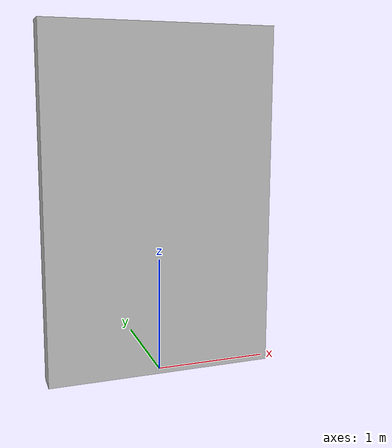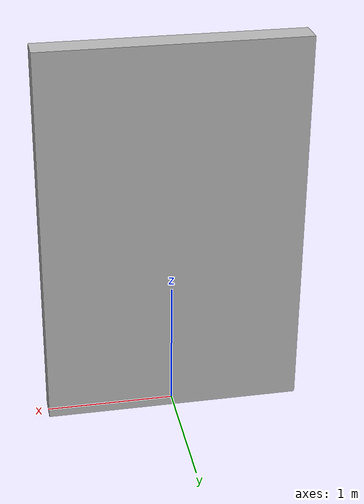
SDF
<?xml version="1.0" ?>
<sdf version="1.5">
  <model name="wall9">
    <static>true</static>
    <link name="chassis">
      <pose>0 0 1.5 0 0 0</pose>
      <collision name="collision">
        <geometry>
          <box>
            <size>2.0 0.2 3.0</size>
          </box>
        </geometry>
      </collision>
      <visual name="visual">
        <geometry>
          <mesh>
            <uri>model://wall9/meshes/simple_box.dae</uri>
            <scale>2.0 0.2 3.0</scale>
          </mesh>
        </geometry>
        <material>
          <script>
            <uri>model://wall9/materials/scripts</uri>
            <uri>model://wall9/materials/textures</uri>
            <name>wall9/Diffuse</name>
          </script>
        </material>
      </visual>
    </link>
  </model>
</sdf>
